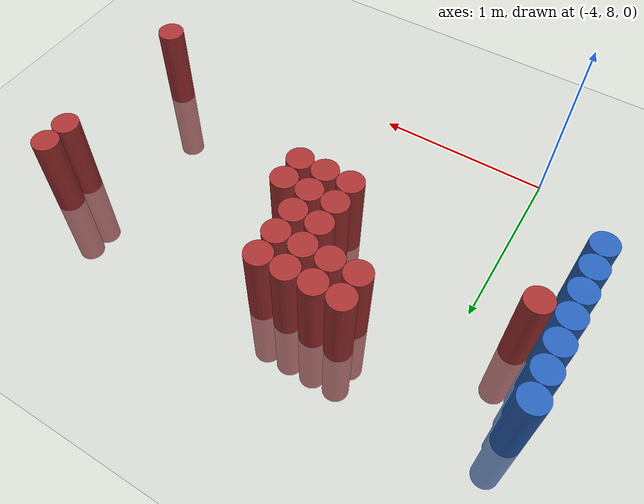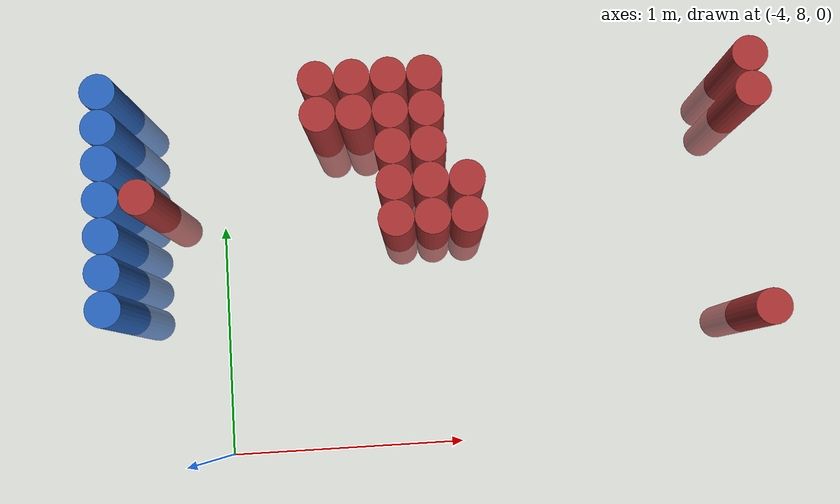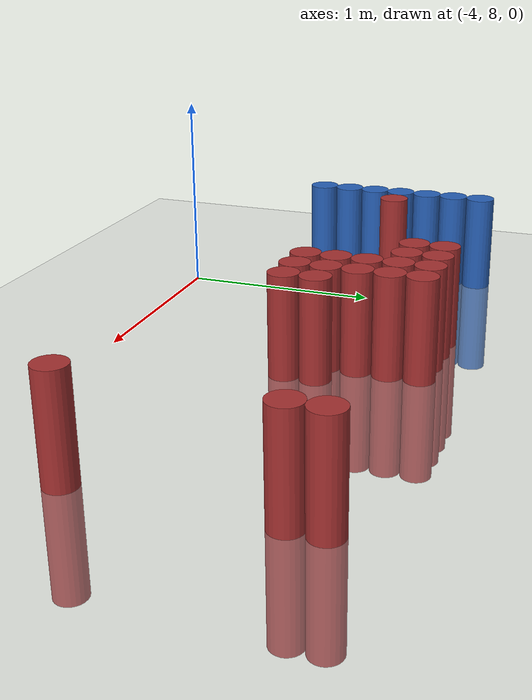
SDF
<sdf version="1.6">
 <world name="world_84">
  <model name="ground_plane">
   <static>1</static>
   <link name="link">
    <collision name="collision">
     <geometry><plane><normal>0 0 1</normal><size>100 100</size></plane></geometry>
     <surface><friction><ode><mu>100</mu><mu2>50</mu2></ode></friction></surface>
    </collision>
    <visual name="visual">
     <cast_shadows>0</cast_shadows>
     <geometry><plane><normal>0 0 1</normal><size>100 100</size></plane></geometry>
     <material>
      <script><uri>file://media/materials/scripts/gazebo.material</uri><name>Gazebo/Grey</name></script>
     </material>
    </visual>
   </link>
  </model>
  <model name="unit_cylinder_119">
   <static>1</static>
   <pose>-4.425000 8.625000 0.000000 0.000000 0.000000 0.000000</pose>
   <link name="link">
    <inertial>
     <mass>1</mass>
     <inertia><ixx>0.145833</ixx><ixy>0</ixy><ixz>0</ixz><iyy>0.145833</iyy><iyz>0</iyz><izz>0.125</izz></inertia>
    </inertial>
    <collision name="collision">
     <geometry><cylinder><radius>0.075000</radius><length>1</length></cylinder></geometry>
    </collision>
    <visual name="visual">
     <geometry><cylinder><radius>0.075000</radius><length>1</length></cylinder></geometry>
     <material>
      <ambient>0.152000 0.379000 0.720000 1</ambient>
      <diffuse>0.152000 0.379000 0.720000 1</diffuse>
     </material>
     <material>
      <script><name>Gazebo/Grey</name><uri>file://media/materials/scripts/gazebo.material</uri></script>
     </material>
    </visual>
   </link>
  </model>
  <model name="unit_cylinder_120">
   <static>1</static>
   <pose>-4.425000 8.775000 0.000000 0.000000 0.000000 0.000000</pose>
   <link name="link">
    <inertial>
     <mass>1</mass>
     <inertia><ixx>0.145833</ixx><ixy>0</ixy><ixz>0</ixz><iyy>0.145833</iyy><iyz>0</iyz><izz>0.125</izz></inertia>
    </inertial>
    <collision name="collision">
     <geometry><cylinder><radius>0.075000</radius><length>1</length></cylinder></geometry>
    </collision>
    <visual name="visual">
     <geometry><cylinder><radius>0.075000</radius><length>1</length></cylinder></geometry>
     <material>
      <ambient>0.152000 0.379000 0.720000 1</ambient>
      <diffuse>0.152000 0.379000 0.720000 1</diffuse>
     </material>
     <material>
      <script><name>Gazebo/Grey</name><uri>file://media/materials/scripts/gazebo.material</uri></script>
     </material>
    </visual>
   </link>
  </model>
  <model name="unit_cylinder_121">
   <static>1</static>
   <pose>-4.425000 8.925000 0.000000 0.000000 0.000000 0.000000</pose>
   <link name="link">
    <inertial>
     <mass>1</mass>
     <inertia><ixx>0.145833</ixx><ixy>0</ixy><ixz>0</ixz><iyy>0.145833</iyy><iyz>0</iyz><izz>0.125</izz></inertia>
    </inertial>
    <collision name="collision">
     <geometry><cylinder><radius>0.075000</radius><length>1</length></cylinder></geometry>
    </collision>
    <visual name="visual">
     <geometry><cylinder><radius>0.075000</radius><length>1</length></cylinder></geometry>
     <material>
      <ambient>0.152000 0.379000 0.720000 1</ambient>
      <diffuse>0.152000 0.379000 0.720000 1</diffuse>
     </material>
     <material>
      <script><name>Gazebo/Grey</name><uri>file://media/materials/scripts/gazebo.material</uri></script>
     </material>
    </visual>
   </link>
  </model>
  <model name="unit_cylinder_122">
   <static>1</static>
   <pose>-4.425000 9.075000 0.000000 0.000000 0.000000 0.000000</pose>
   <link name="link">
    <inertial>
     <mass>1</mass>
     <inertia><ixx>0.145833</ixx><ixy>0</ixy><ixz>0</ixz><iyy>0.145833</iyy><iyz>0</iyz><izz>0.125</izz></inertia>
    </inertial>
    <collision name="collision">
     <geometry><cylinder><radius>0.075000</radius><length>1</length></cylinder></geometry>
    </collision>
    <visual name="visual">
     <geometry><cylinder><radius>0.075000</radius><length>1</length></cylinder></geometry>
     <material>
      <ambient>0.152000 0.379000 0.720000 1</ambient>
      <diffuse>0.152000 0.379000 0.720000 1</diffuse>
     </material>
     <material>
      <script><name>Gazebo/Grey</name><uri>file://media/materials/scripts/gazebo.material</uri></script>
     </material>
    </visual>
   </link>
  </model>
  <model name="unit_cylinder_123">
   <static>1</static>
   <pose>-4.425000 9.225000 0.000000 0.000000 0.000000 0.000000</pose>
   <link name="link">
    <inertial>
     <mass>1</mass>
     <inertia><ixx>0.145833</ixx><ixy>0</ixy><ixz>0</ixz><iyy>0.145833</iyy><iyz>0</iyz><izz>0.125</izz></inertia>
    </inertial>
    <collision name="collision">
     <geometry><cylinder><radius>0.075000</radius><length>1</length></cylinder></geometry>
    </collision>
    <visual name="visual">
     <geometry><cylinder><radius>0.075000</radius><length>1</length></cylinder></geometry>
     <material>
      <ambient>0.152000 0.379000 0.720000 1</ambient>
      <diffuse>0.152000 0.379000 0.720000 1</diffuse>
     </material>
     <material>
      <script><name>Gazebo/Grey</name><uri>file://media/materials/scripts/gazebo.material</uri></script>
     </material>
    </visual>
   </link>
  </model>
  <model name="unit_cylinder_124">
   <static>1</static>
   <pose>-4.425000 9.375000 0.000000 0.000000 0.000000 0.000000</pose>
   <link name="link">
    <inertial>
     <mass>1</mass>
     <inertia><ixx>0.145833</ixx><ixy>0</ixy><ixz>0</ixz><iyy>0.145833</iyy><iyz>0</iyz><izz>0.125</izz></inertia>
    </inertial>
    <collision name="collision">
     <geometry><cylinder><radius>0.075000</radius><length>1</length></cylinder></geometry>
    </collision>
    <visual name="visual">
     <geometry><cylinder><radius>0.075000</radius><length>1</length></cylinder></geometry>
     <material>
      <ambient>0.152000 0.379000 0.720000 1</ambient>
      <diffuse>0.152000 0.379000 0.720000 1</diffuse>
     </material>
     <material>
      <script><name>Gazebo/Grey</name><uri>file://media/materials/scripts/gazebo.material</uri></script>
     </material>
    </visual>
   </link>
  </model>
  <model name="unit_cylinder_125">
   <static>1</static>
   <pose>-4.425000 9.525000 0.000000 0.000000 0.000000 0.000000</pose>
   <link name="link">
    <inertial>
     <mass>1</mass>
     <inertia><ixx>0.145833</ixx><ixy>0</ixy><ixz>0</ixz><iyy>0.145833</iyy><iyz>0</iyz><izz>0.125</izz></inertia>
    </inertial>
    <collision name="collision">
     <geometry><cylinder><radius>0.075000</radius><length>1</length></cylinder></geometry>
    </collision>
    <visual name="visual">
     <geometry><cylinder><radius>0.075000</radius><length>1</length></cylinder></geometry>
     <material>
      <ambient>0.152000 0.379000 0.720000 1</ambient>
      <diffuse>0.152000 0.379000 0.720000 1</diffuse>
     </material>
     <material>
      <script><name>Gazebo/Grey</name><uri>file://media/materials/scripts/gazebo.material</uri></script>
     </material>
    </visual>
   </link>
  </model>
  <model name="unit_cylinder_128">
   <static>1</static>
   <pose>-4.275000 9.075000 0.000000 0.000000 0.000000 0.000000</pose>
   <link name="link">
    <inertial>
     <mass>1</mass>
     <inertia><ixx>0.145833</ixx><ixy>0</ixy><ixz>0</ixz><iyy>0.145833</iyy><iyz>0</iyz><izz>0.125</izz></inertia>
    </inertial>
    <collision name="collision">
     <geometry><cylinder><radius>0.075000</radius><length>1</length></cylinder></geometry>
    </collision>
    <visual name="visual">
     <geometry><cylinder><radius>0.075000</radius><length>1</length></cylinder></geometry>
     <material>
      <ambient>0.648000 0.192000 0.192000 1</ambient>
      <diffuse>0.648000 0.192000 0.192000 1</diffuse>
     </material>
     <material>
      <script><name>Gazebo/Grey</name><uri>file://media/materials/scripts/gazebo.material</uri></script>
     </material>
    </visual>
   </link>
  </model>
  <model name="unit_cylinder_129">
   <static>1</static>
   <pose>-3.525000 9.375000 0.000000 0.000000 0.000000 0.000000</pose>
   <link name="link">
    <inertial>
     <mass>1</mass>
     <inertia><ixx>0.145833</ixx><ixy>0</ixy><ixz>0</ixz><iyy>0.145833</iyy><iyz>0</iyz><izz>0.125</izz></inertia>
    </inertial>
    <collision name="collision">
     <geometry><cylinder><radius>0.075000</radius><length>1</length></cylinder></geometry>
    </collision>
    <visual name="visual">
     <geometry><cylinder><radius>0.075000</radius><length>1</length></cylinder></geometry>
     <material>
      <ambient>0.648000 0.192000 0.192000 1</ambient>
      <diffuse>0.648000 0.192000 0.192000 1</diffuse>
     </material>
     <material>
      <script><name>Gazebo/Grey</name><uri>file://media/materials/scripts/gazebo.material</uri></script>
     </material>
    </visual>
   </link>
  </model>
  <model name="unit_cylinder_130">
   <static>1</static>
   <pose>-3.525000 9.525000 0.000000 0.000000 0.000000 0.000000</pose>
   <link name="link">
    <inertial>
     <mass>1</mass>
     <inertia><ixx>0.145833</ixx><ixy>0</ixy><ixz>0</ixz><iyy>0.145833</iyy><iyz>0</iyz><izz>0.125</izz></inertia>
    </inertial>
    <collision name="collision">
     <geometry><cylinder><radius>0.075000</radius><length>1</length></cylinder></geometry>
    </collision>
    <visual name="visual">
     <geometry><cylinder><radius>0.075000</radius><length>1</length></cylinder></geometry>
     <material>
      <ambient>0.648000 0.192000 0.192000 1</ambient>
      <diffuse>0.648000 0.192000 0.192000 1</diffuse>
     </material>
     <material>
      <script><name>Gazebo/Grey</name><uri>file://media/materials/scripts/gazebo.material</uri></script>
     </material>
    </visual>
   </link>
  </model>
  <model name="unit_cylinder_131">
   <static>1</static>
   <pose>-3.375000 9.375000 0.000000 0.000000 0.000000 0.000000</pose>
   <link name="link">
    <inertial>
     <mass>1</mass>
     <inertia><ixx>0.145833</ixx><ixy>0</ixy><ixz>0</ixz><iyy>0.145833</iyy><iyz>0</iyz><izz>0.125</izz></inertia>
    </inertial>
    <collision name="collision">
     <geometry><cylinder><radius>0.075000</radius><length>1</length></cylinder></geometry>
    </collision>
    <visual name="visual">
     <geometry><cylinder><radius>0.075000</radius><length>1</length></cylinder></geometry>
     <material>
      <ambient>0.648000 0.192000 0.192000 1</ambient>
      <diffuse>0.648000 0.192000 0.192000 1</diffuse>
     </material>
     <material>
      <script><name>Gazebo/Grey</name><uri>file://media/materials/scripts/gazebo.material</uri></script>
     </material>
    </visual>
   </link>
  </model>
  <model name="unit_cylinder_132">
   <static>1</static>
   <pose>-3.375000 9.525000 0.000000 0.000000 0.000000 0.000000</pose>
   <link name="link">
    <inertial>
     <mass>1</mass>
     <inertia><ixx>0.145833</ixx><ixy>0</ixy><ixz>0</ixz><iyy>0.145833</iyy><iyz>0</iyz><izz>0.125</izz></inertia>
    </inertial>
    <collision name="collision">
     <geometry><cylinder><radius>0.075000</radius><length>1</length></cylinder></geometry>
    </collision>
    <visual name="visual">
     <geometry><cylinder><radius>0.075000</radius><length>1</length></cylinder></geometry>
     <material>
      <ambient>0.648000 0.192000 0.192000 1</ambient>
      <diffuse>0.648000 0.192000 0.192000 1</diffuse>
     </material>
     <material>
      <script><name>Gazebo/Grey</name><uri>file://media/materials/scripts/gazebo.material</uri></script>
     </material>
    </visual>
   </link>
  </model>
  <model name="unit_cylinder_133">
   <static>1</static>
   <pose>-3.225000 8.925000 0.000000 0.000000 0.000000 0.000000</pose>
   <link name="link">
    <inertial>
     <mass>1</mass>
     <inertia><ixx>0.145833</ixx><ixy>0</ixy><ixz>0</ixz><iyy>0.145833</iyy><iyz>0</iyz><izz>0.125</izz></inertia>
    </inertial>
    <collision name="collision">
     <geometry><cylinder><radius>0.075000</radius><length>1</length></cylinder></geometry>
    </collision>
    <visual name="visual">
     <geometry><cylinder><radius>0.075000</radius><length>1</length></cylinder></geometry>
     <material>
      <ambient>0.648000 0.192000 0.192000 1</ambient>
      <diffuse>0.648000 0.192000 0.192000 1</diffuse>
     </material>
     <material>
      <script><name>Gazebo/Grey</name><uri>file://media/materials/scripts/gazebo.material</uri></script>
     </material>
    </visual>
   </link>
  </model>
  <model name="unit_cylinder_134">
   <static>1</static>
   <pose>-3.225000 9.075000 0.000000 0.000000 0.000000 0.000000</pose>
   <link name="link">
    <inertial>
     <mass>1</mass>
     <inertia><ixx>0.145833</ixx><ixy>0</ixy><ixz>0</ixz><iyy>0.145833</iyy><iyz>0</iyz><izz>0.125</izz></inertia>
    </inertial>
    <collision name="collision">
     <geometry><cylinder><radius>0.075000</radius><length>1</length></cylinder></geometry>
    </collision>
    <visual name="visual">
     <geometry><cylinder><radius>0.075000</radius><length>1</length></cylinder></geometry>
     <material>
      <ambient>0.648000 0.192000 0.192000 1</ambient>
      <diffuse>0.648000 0.192000 0.192000 1</diffuse>
     </material>
     <material>
      <script><name>Gazebo/Grey</name><uri>file://media/materials/scripts/gazebo.material</uri></script>
     </material>
    </visual>
   </link>
  </model>
  <model name="unit_cylinder_135">
   <static>1</static>
   <pose>-3.225000 9.225000 0.000000 0.000000 0.000000 0.000000</pose>
   <link name="link">
    <inertial>
     <mass>1</mass>
     <inertia><ixx>0.145833</ixx><ixy>0</ixy><ixz>0</ixz><iyy>0.145833</iyy><iyz>0</iyz><izz>0.125</izz></inertia>
    </inertial>
    <collision name="collision">
     <geometry><cylinder><radius>0.075000</radius><length>1</length></cylinder></geometry>
    </collision>
    <visual name="visual">
     <geometry><cylinder><radius>0.075000</radius><length>1</length></cylinder></geometry>
     <material>
      <ambient>0.648000 0.192000 0.192000 1</ambient>
      <diffuse>0.648000 0.192000 0.192000 1</diffuse>
     </material>
     <material>
      <script><name>Gazebo/Grey</name><uri>file://media/materials/scripts/gazebo.material</uri></script>
     </material>
    </visual>
   </link>
  </model>
  <model name="unit_cylinder_136">
   <static>1</static>
   <pose>-3.225000 9.375000 0.000000 0.000000 0.000000 0.000000</pose>
   <link name="link">
    <inertial>
     <mass>1</mass>
     <inertia><ixx>0.145833</ixx><ixy>0</ixy><ixz>0</ixz><iyy>0.145833</iyy><iyz>0</iyz><izz>0.125</izz></inertia>
    </inertial>
    <collision name="collision">
     <geometry><cylinder><radius>0.075000</radius><length>1</length></cylinder></geometry>
    </collision>
    <visual name="visual">
     <geometry><cylinder><radius>0.075000</radius><length>1</length></cylinder></geometry>
     <material>
      <ambient>0.648000 0.192000 0.192000 1</ambient>
      <diffuse>0.648000 0.192000 0.192000 1</diffuse>
     </material>
     <material>
      <script><name>Gazebo/Grey</name><uri>file://media/materials/scripts/gazebo.material</uri></script>
     </material>
    </visual>
   </link>
  </model>
  <model name="unit_cylinder_137">
   <static>1</static>
   <pose>-3.225000 9.525000 0.000000 0.000000 0.000000 0.000000</pose>
   <link name="link">
    <inertial>
     <mass>1</mass>
     <inertia><ixx>0.145833</ixx><ixy>0</ixy><ixz>0</ixz><iyy>0.145833</iyy><iyz>0</iyz><izz>0.125</izz></inertia>
    </inertial>
    <collision name="collision">
     <geometry><cylinder><radius>0.075000</radius><length>1</length></cylinder></geometry>
    </collision>
    <visual name="visual">
     <geometry><cylinder><radius>0.075000</radius><length>1</length></cylinder></geometry>
     <material>
      <ambient>0.648000 0.192000 0.192000 1</ambient>
      <diffuse>0.648000 0.192000 0.192000 1</diffuse>
     </material>
     <material>
      <script><name>Gazebo/Grey</name><uri>file://media/materials/scripts/gazebo.material</uri></script>
     </material>
    </visual>
   </link>
  </model>
  <model name="unit_cylinder_138">
   <static>1</static>
   <pose>-3.075000 8.925000 0.000000 0.000000 0.000000 0.000000</pose>
   <link name="link">
    <inertial>
     <mass>1</mass>
     <inertia><ixx>0.145833</ixx><ixy>0</ixy><ixz>0</ixz><iyy>0.145833</iyy><iyz>0</iyz><izz>0.125</izz></inertia>
    </inertial>
    <collision name="collision">
     <geometry><cylinder><radius>0.075000</radius><length>1</length></cylinder></geometry>
    </collision>
    <visual name="visual">
     <geometry><cylinder><radius>0.075000</radius><length>1</length></cylinder></geometry>
     <material>
      <ambient>0.648000 0.192000 0.192000 1</ambient>
      <diffuse>0.648000 0.192000 0.192000 1</diffuse>
     </material>
     <material>
      <script><name>Gazebo/Grey</name><uri>file://media/materials/scripts/gazebo.material</uri></script>
     </material>
    </visual>
   </link>
  </model>
  <model name="unit_cylinder_139">
   <static>1</static>
   <pose>-3.075000 9.075000 0.000000 0.000000 0.000000 0.000000</pose>
   <link name="link">
    <inertial>
     <mass>1</mass>
     <inertia><ixx>0.145833</ixx><ixy>0</ixy><ixz>0</ixz><iyy>0.145833</iyy><iyz>0</iyz><izz>0.125</izz></inertia>
    </inertial>
    <collision name="collision">
     <geometry><cylinder><radius>0.075000</radius><length>1</length></cylinder></geometry>
    </collision>
    <visual name="visual">
     <geometry><cylinder><radius>0.075000</radius><length>1</length></cylinder></geometry>
     <material>
      <ambient>0.648000 0.192000 0.192000 1</ambient>
      <diffuse>0.648000 0.192000 0.192000 1</diffuse>
     </material>
     <material>
      <script><name>Gazebo/Grey</name><uri>file://media/materials/scripts/gazebo.material</uri></script>
     </material>
    </visual>
   </link>
  </model>
  <model name="unit_cylinder_140">
   <static>1</static>
   <pose>-3.075000 9.225000 0.000000 0.000000 0.000000 0.000000</pose>
   <link name="link">
    <inertial>
     <mass>1</mass>
     <inertia><ixx>0.145833</ixx><ixy>0</ixy><ixz>0</ixz><iyy>0.145833</iyy><iyz>0</iyz><izz>0.125</izz></inertia>
    </inertial>
    <collision name="collision">
     <geometry><cylinder><radius>0.075000</radius><length>1</length></cylinder></geometry>
    </collision>
    <visual name="visual">
     <geometry><cylinder><radius>0.075000</radius><length>1</length></cylinder></geometry>
     <material>
      <ambient>0.648000 0.192000 0.192000 1</ambient>
      <diffuse>0.648000 0.192000 0.192000 1</diffuse>
     </material>
     <material>
      <script><name>Gazebo/Grey</name><uri>file://media/materials/scripts/gazebo.material</uri></script>
     </material>
    </visual>
   </link>
  </model>
  <model name="unit_cylinder_141">
   <static>1</static>
   <pose>-3.075000 9.375000 0.000000 0.000000 0.000000 0.000000</pose>
   <link name="link">
    <inertial>
     <mass>1</mass>
     <inertia><ixx>0.145833</ixx><ixy>0</ixy><ixz>0</ixz><iyy>0.145833</iyy><iyz>0</iyz><izz>0.125</izz></inertia>
    </inertial>
    <collision name="collision">
     <geometry><cylinder><radius>0.075000</radius><length>1</length></cylinder></geometry>
    </collision>
    <visual name="visual">
     <geometry><cylinder><radius>0.075000</radius><length>1</length></cylinder></geometry>
     <material>
      <ambient>0.648000 0.192000 0.192000 1</ambient>
      <diffuse>0.648000 0.192000 0.192000 1</diffuse>
     </material>
     <material>
      <script><name>Gazebo/Grey</name><uri>file://media/materials/scripts/gazebo.material</uri></script>
     </material>
    </visual>
   </link>
  </model>
  <model name="unit_cylinder_142">
   <static>1</static>
   <pose>-3.075000 9.525000 0.000000 0.000000 0.000000 0.000000</pose>
   <link name="link">
    <inertial>
     <mass>1</mass>
     <inertia><ixx>0.145833</ixx><ixy>0</ixy><ixz>0</ixz><iyy>0.145833</iyy><iyz>0</iyz><izz>0.125</izz></inertia>
    </inertial>
    <collision name="collision">
     <geometry><cylinder><radius>0.075000</radius><length>1</length></cylinder></geometry>
    </collision>
    <visual name="visual">
     <geometry><cylinder><radius>0.075000</radius><length>1</length></cylinder></geometry>
     <material>
      <ambient>0.648000 0.192000 0.192000 1</ambient>
      <diffuse>0.648000 0.192000 0.192000 1</diffuse>
     </material>
     <material>
      <script><name>Gazebo/Grey</name><uri>file://media/materials/scripts/gazebo.material</uri></script>
     </material>
    </visual>
   </link>
  </model>
  <model name="unit_cylinder_143">
   <static>1</static>
   <pose>-2.925000 8.925000 0.000000 0.000000 0.000000 0.000000</pose>
   <link name="link">
    <inertial>
     <mass>1</mass>
     <inertia><ixx>0.145833</ixx><ixy>0</ixy><ixz>0</ixz><iyy>0.145833</iyy><iyz>0</iyz><izz>0.125</izz></inertia>
    </inertial>
    <collision name="collision">
     <geometry><cylinder><radius>0.075000</radius><length>1</length></cylinder></geometry>
    </collision>
    <visual name="visual">
     <geometry><cylinder><radius>0.075000</radius><length>1</length></cylinder></geometry>
     <material>
      <ambient>0.648000 0.192000 0.192000 1</ambient>
      <diffuse>0.648000 0.192000 0.192000 1</diffuse>
     </material>
     <material>
      <script><name>Gazebo/Grey</name><uri>file://media/materials/scripts/gazebo.material</uri></script>
     </material>
    </visual>
   </link>
  </model>
  <model name="unit_cylinder_144">
   <static>1</static>
   <pose>-2.925000 9.075000 0.000000 0.000000 0.000000 0.000000</pose>
   <link name="link">
    <inertial>
     <mass>1</mass>
     <inertia><ixx>0.145833</ixx><ixy>0</ixy><ixz>0</ixz><iyy>0.145833</iyy><iyz>0</iyz><izz>0.125</izz></inertia>
    </inertial>
    <collision name="collision">
     <geometry><cylinder><radius>0.075000</radius><length>1</length></cylinder></geometry>
    </collision>
    <visual name="visual">
     <geometry><cylinder><radius>0.075000</radius><length>1</length></cylinder></geometry>
     <material>
      <ambient>0.648000 0.192000 0.192000 1</ambient>
      <diffuse>0.648000 0.192000 0.192000 1</diffuse>
     </material>
     <material>
      <script><name>Gazebo/Grey</name><uri>file://media/materials/scripts/gazebo.material</uri></script>
     </material>
    </visual>
   </link>
  </model>
  <model name="unit_cylinder_154">
   <static>1</static>
   <pose>-1.725000 8.475000 0.000000 0.000000 0.000000 0.000000</pose>
   <link name="link">
    <inertial>
     <mass>1</mass>
     <inertia><ixx>0.145833</ixx><ixy>0</ixy><ixz>0</ixz><iyy>0.145833</iyy><iyz>0</iyz><izz>0.125</izz></inertia>
    </inertial>
    <collision name="collision">
     <geometry><cylinder><radius>0.075000</radius><length>1</length></cylinder></geometry>
    </collision>
    <visual name="visual">
     <geometry><cylinder><radius>0.075000</radius><length>1</length></cylinder></geometry>
     <material>
      <ambient>0.648000 0.192000 0.192000 1</ambient>
      <diffuse>0.648000 0.192000 0.192000 1</diffuse>
     </material>
     <material>
      <script><name>Gazebo/Grey</name><uri>file://media/materials/scripts/gazebo.material</uri></script>
     </material>
    </visual>
   </link>
  </model>
  <model name="unit_cylinder_155">
   <static>1</static>
   <pose>-1.725000 9.375000 0.000000 0.000000 0.000000 0.000000</pose>
   <link name="link">
    <inertial>
     <mass>1</mass>
     <inertia><ixx>0.145833</ixx><ixy>0</ixy><ixz>0</ixz><iyy>0.145833</iyy><iyz>0</iyz><izz>0.125</izz></inertia>
    </inertial>
    <collision name="collision">
     <geometry><cylinder><radius>0.075000</radius><length>1</length></cylinder></geometry>
    </collision>
    <visual name="visual">
     <geometry><cylinder><radius>0.075000</radius><length>1</length></cylinder></geometry>
     <material>
      <ambient>0.648000 0.192000 0.192000 1</ambient>
      <diffuse>0.648000 0.192000 0.192000 1</diffuse>
     </material>
     <material>
      <script><name>Gazebo/Grey</name><uri>file://media/materials/scripts/gazebo.material</uri></script>
     </material>
    </visual>
   </link>
  </model>
  <model name="unit_cylinder_156">
   <static>1</static>
   <pose>-1.725000 9.525000 0.000000 0.000000 0.000000 0.000000</pose>
   <link name="link">
    <inertial>
     <mass>1</mass>
     <inertia><ixx>0.145833</ixx><ixy>0</ixy><ixz>0</ixz><iyy>0.145833</iyy><iyz>0</iyz><izz>0.125</izz></inertia>
    </inertial>
    <collision name="collision">
     <geometry><cylinder><radius>0.075000</radius><length>1</length></cylinder></geometry>
    </collision>
    <visual name="visual">
     <geometry><cylinder><radius>0.075000</radius><length>1</length></cylinder></geometry>
     <material>
      <ambient>0.648000 0.192000 0.192000 1</ambient>
      <diffuse>0.648000 0.192000 0.192000 1</diffuse>
     </material>
     <material>
      <script><name>Gazebo/Grey</name><uri>file://media/materials/scripts/gazebo.material</uri></script>
     </material>
    </visual>
   </link>
  </model>
 </world>
</sdf>
